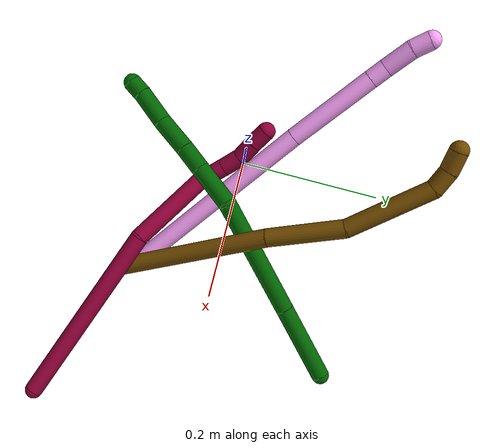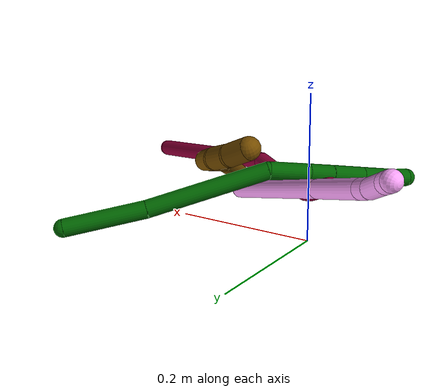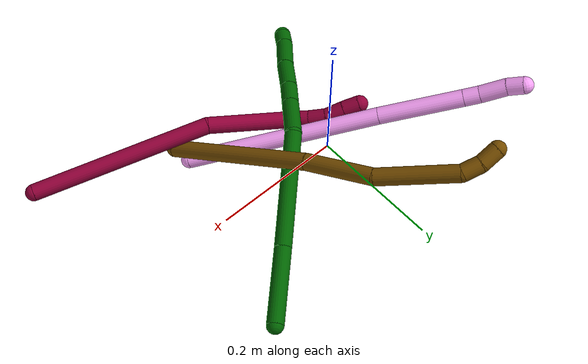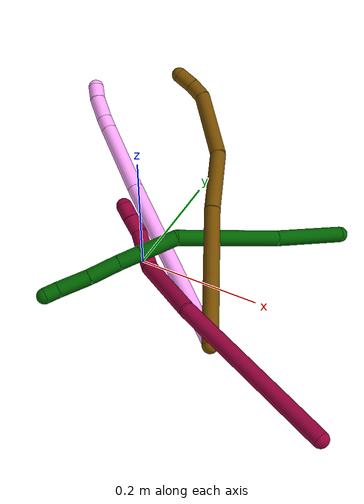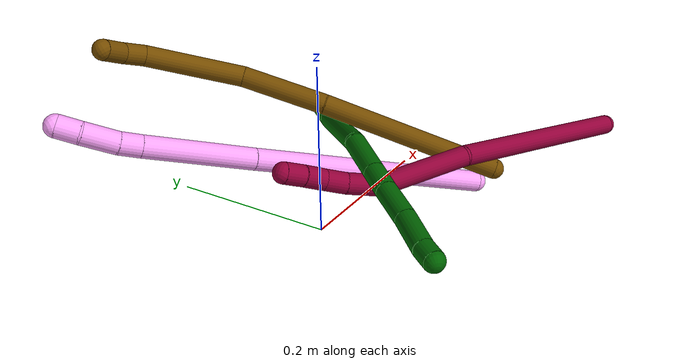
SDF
<sdf version="1.7">
 <world name="default">
  <model name="photoneo_s_sensor">
   <static>1</static>
   <pose>0 0 2 1.57079 1.57079 3.14159</pose>
   <link name="link">
    <inertial><mass>0.1</mass></inertial>
    <sensor name="sensor" type="depth">
     <update_rate>30</update_rate>
     <camera>
      <horizontal_fov>1.22</horizontal_fov>
      <image><width>1920</width><height>1200</height><format>B8G8R8</format></image>
      <clip><near>0.1</near><far>4</far></clip>
      <depth_camera><output>points</output></depth_camera>
     </camera>
     <plugin name="camera_plugin" filename="libgazebo_ros_depth_camera.so">
      <baseline>0.2</baseline>
      <alwaysOn>1</alwaysOn>
      <updateRate>0.0</updateRate>
      <cameraName>camera_ir</cameraName>
      <imageTopicName>/camera/color/image_raw</imageTopicName>
      <cameraInfoTopicName>/camera/color/camera_info</cameraInfoTopicName>
      <depthImageTopicName>/camera/depth/image_raw</depthImageTopicName>
      <depthImageCameraInfoTopicName>/camera/depth/camera_info</depthImageCameraInfoTopicName>
      <pointCloudTopicName>/camera/depth/points</pointCloudTopicName>
      <frameName>fr_optical</frameName>
      <pointCloudCutoff>0.1</pointCloudCutoff>
      <pointCloudCutoffMax>2.0</pointCloudCutoffMax>
      <distortionK1>0</distortionK1>
      <distortionK2>0</distortionK2>
      <distortionK3>0</distortionK3>
      <distortionT1>0</distortionT1>
      <distortionT2>0</distortionT2>
      <CxPrime>0</CxPrime>
      <Cx>0</Cx>
      <Cy>0</Cy>
      <focalLength>0</focalLength>
      <hackBaseline>0</hackBaseline>
     </plugin>
    </sensor>
   </link>
  </model>
  <model name="bin">
   <static>1</static>
   <link name="bottom">
    <collision name="collision-bottom">
     <pose>0 0 -0.01 0 -0 0</pose>
     <geometry><box><size>0.8 0.6 0.02</size></box></geometry>
     <surface>
      <friction><ode><mu>100</mu><mu2>100</mu2></ode></friction>
      <contact><collide_bitmask>65535</collide_bitmask></contact>
     </surface>
    </collision>
   </link>
   <link name="west_wall">
    <collision name="collision-west_wall">
     <pose>-0.41 0 0.1 0 -0 0</pose>
     <geometry><box><size>0.02 0.6 0.2</size></box></geometry>
     <surface>
      <friction><ode><mu>100</mu><mu2>100</mu2></ode></friction>
      <contact><collide_bitmask>65535</collide_bitmask></contact>
     </surface>
    </collision>
   </link>
   <link name="east_wall">
    <collision name="collision-east_wall">
     <pose>0.41 0 0.1 0 -0 0</pose>
     <geometry><box><size>0.02 0.6 0.2</size></box></geometry>
     <surface>
      <friction><ode><mu>100</mu><mu2>100</mu2></ode></friction>
      <contact><collide_bitmask>65535</collide_bitmask></contact>
     </surface>
    </collision>
   </link>
   <link name="south_wall">
    <collision name="collision-south_wall">
     <pose>0 -0.31 0.1 0 -0 0</pose>
     <geometry><box><size>0.8 0.02 0.2</size></box></geometry>
     <surface>
      <friction><ode><mu>100</mu><mu2>100</mu2></ode></friction>
      <contact><collide_bitmask>65535</collide_bitmask></contact>
     </surface>
    </collision>
   </link>
   <link name="north_wall">
    <collision name="collision-north_wall">
     <pose>0 0.31 0.1 0 -0 0</pose>
     <geometry><box><size>0.8 0.02 0.2</size></box></geometry>
     <surface>
      <friction><ode><mu>100</mu><mu2>100</mu2></ode></friction>
      <contact><collide_bitmask>65535</collide_bitmask></contact>
     </surface>
    </collision>
   </link>
  </model>
  <model name="4">
   <static>0</static>
   <link name="4">
    <collision name="collision-cylinder-e_1_1_4">
     <pose>-0.041147 0.050839 0.128882 -0.375724 -0.288694 0.055252</pose>
     <geometry><cylinder><radius>0.0125</radius><length>0.289057</length></cylinder></geometry>
     <surface>
      <friction><ode><mu>1.16</mu><mu2>1.16</mu2><slip1>0</slip1><slip2>0</slip2></ode></friction>
      <contact><ode><kp>1e+06</kp><kd>1</kd><max_vel>0</max_vel><min_depth>0.001</min_depth></ode></contact>
     </surface>
    </collision>
    <visual name="visual-cylinder-e_1_1_4">
     <pose>-0.041147 0.050839 0.128882 -0.375724 -0.288694 0.055252</pose>
     <geometry><cylinder><radius>0.0125</radius><length>0.289057</length></cylinder></geometry>
     <material><ambient>1 0.65098 0.996078 1</ambient></material>
    </visual>
    <collision name="collision-cylinder-e_2_4_5">
     <pose>-0.101488 0.123522 0.312202 -0.381587 -0.316242 0.061575</pose>
     <geometry><cylinder><radius>0.0125</radius><length>0.123432</length></cylinder></geometry>
     <surface>
      <friction><ode><mu>1.16</mu><mu2>1.16</mu2><slip1>0</slip1><slip2>0</slip2></ode></friction>
      <contact><ode><kp>1e+06</kp><kd>1</kd><max_vel>0</max_vel><min_depth>0.001</min_depth></ode></contact>
     </surface>
    </collision>
    <visual name="visual-cylinder-e_2_4_5">
     <pose>-0.101488 0.123522 0.312202 -0.381587 -0.316242 0.061575</pose>
     <geometry><cylinder><radius>0.0125</radius><length>0.123432</length></cylinder></geometry>
     <material><ambient>1 0.65098 0.996078 1</ambient></material>
    </visual>
    <collision name="collision-cylinder-e_3_5_6">
     <pose>-0.124401 0.149769 0.37688 -0.40614 -0.322001 0.066857</pose>
     <geometry><cylinder><radius>0.0125</radius><length>0.023504</length></cylinder></geometry>
     <surface>
      <friction><ode><mu>1.16</mu><mu2>1.16</mu2><slip1>0</slip1><slip2>0</slip2></ode></friction>
      <contact><ode><kp>1e+06</kp><kd>1</kd><max_vel>0</max_vel><min_depth>0.001</min_depth></ode></contact>
     </surface>
    </collision>
    <visual name="visual-cylinder-e_3_5_6">
     <pose>-0.124401 0.149769 0.37688 -0.40614 -0.322001 0.066857</pose>
     <geometry><cylinder><radius>0.0125</radius><length>0.023504</length></cylinder></geometry>
     <material><ambient>1 0.65098 0.996078 1</ambient></material>
    </visual>
    <collision name="collision-cylinder-e_4_6_7">
     <pose>-0.134393 0.163829 0.40318 -0.541357 -0.323035 0.090365</pose>
     <geometry><cylinder><radius>0.0125</radius><length>0.039521</length></cylinder></geometry>
     <surface>
      <friction><ode><mu>1.16</mu><mu2>1.16</mu2><slip1>0</slip1><slip2>0</slip2></ode></friction>
      <contact><ode><kp>1e+06</kp><kd>1</kd><max_vel>0</max_vel><min_depth>0.001</min_depth></ode></contact>
     </surface>
    </collision>
    <visual name="visual-cylinder-e_4_6_7">
     <pose>-0.134393 0.163829 0.40318 -0.541357 -0.323035 0.090365</pose>
     <geometry><cylinder><radius>0.0125</radius><length>0.039521</length></cylinder></geometry>
     <material><ambient>1 0.65098 0.996078 1</ambient></material>
    </visual>
    <collision name="collision-cylinder-e_5_7_2">
     <pose>-0.146705 0.178861 0.428432 -0.529105 -0.515874 0.142693</pose>
     <geometry><cylinder><radius>0.0125</radius><length>0.024487</length></cylinder></geometry>
     <surface>
      <friction><ode><mu>1.16</mu><mu2>1.16</mu2><slip1>0</slip1><slip2>0</slip2></ode></friction>
      <contact><ode><kp>1e+06</kp><kd>1</kd><max_vel>0</max_vel><min_depth>0.001</min_depth></ode></contact>
     </surface>
    </collision>
    <visual name="visual-cylinder-e_5_7_2">
     <pose>-0.146705 0.178861 0.428432 -0.529105 -0.515874 0.142693</pose>
     <geometry><cylinder><radius>0.0125</radius><length>0.024487</length></cylinder></geometry>
     <material><ambient>1 0.65098 0.996078 1</ambient></material>
    </visual>
    <collision name="collision-sphere-2">
     <pose>-0.152745 0.184236 0.437626 0 -0 0</pose>
     <geometry><sphere><radius>0.0125</radius></sphere></geometry>
     <surface>
      <friction><ode><mu>1.16</mu><mu2>1.16</mu2><slip1>0</slip1><slip2>0</slip2></ode></friction>
      <contact><ode><kp>1e+06</kp><kd>1</kd><max_vel>0</max_vel><min_depth>0.001</min_depth></ode></contact>
     </surface>
    </collision>
    <visual name="visual-sphere-2">
     <pose>-0.152745 0.184236 0.437626 0 -0 0</pose>
     <geometry><sphere><radius>0.0125</radius></sphere></geometry>
     <material><ambient>1 0.65098 0.996078 1</ambient></material>
    </visual>
    <collision name="collision-sphere-7">
     <pose>-0.140666 0.173485 0.419239 0 -0 0</pose>
     <geometry><sphere><radius>0.0125</radius></sphere></geometry>
     <surface>
      <friction><ode><mu>1.16</mu><mu2>1.16</mu2><slip1>0</slip1><slip2>0</slip2></ode></friction>
      <contact><ode><kp>1e+06</kp><kd>1</kd><max_vel>0</max_vel><min_depth>0.001</min_depth></ode></contact>
     </surface>
    </collision>
    <visual name="visual-sphere-7">
     <pose>-0.140666 0.173485 0.419239 0 -0 0</pose>
     <geometry><sphere><radius>0.0125</radius></sphere></geometry>
     <material><ambient>1 0.65098 0.996078 1</ambient></material>
    </visual>
    <collision name="collision-sphere-6">
     <pose>-0.12812 0.154173 0.387121 0 -0 0</pose>
     <geometry><sphere><radius>0.0125</radius></sphere></geometry>
     <surface>
      <friction><ode><mu>1.16</mu><mu2>1.16</mu2><slip1>0</slip1><slip2>0</slip2></ode></friction>
      <contact><ode><kp>1e+06</kp><kd>1</kd><max_vel>0</max_vel><min_depth>0.001</min_depth></ode></contact>
     </surface>
    </collision>
    <visual name="visual-sphere-6">
     <pose>-0.12812 0.154173 0.387121 0 -0 0</pose>
     <geometry><sphere><radius>0.0125</radius></sphere></geometry>
     <material><ambient>1 0.65098 0.996078 1</ambient></material>
    </visual>
    <collision name="collision-sphere-5">
     <pose>-0.120682 0.145365 0.366638 0 -0 0</pose>
     <geometry><sphere><radius>0.0125</radius></sphere></geometry>
     <surface>
      <friction><ode><mu>1.16</mu><mu2>1.16</mu2><slip1>0</slip1><slip2>0</slip2></ode></friction>
      <contact><ode><kp>1e+06</kp><kd>1</kd><max_vel>0</max_vel><min_depth>0.001</min_depth></ode></contact>
     </surface>
    </collision>
    <visual name="visual-sphere-5">
     <pose>-0.120682 0.145365 0.366638 0 -0 0</pose>
     <geometry><sphere><radius>0.0125</radius></sphere></geometry>
     <material><ambient>1 0.65098 0.996078 1</ambient></material>
    </visual>
    <collision name="collision-sphere-1">
     <geometry><sphere><radius>0.0125</radius></sphere></geometry>
     <surface>
      <friction><ode><mu>1.16</mu><mu2>1.16</mu2><slip1>0</slip1><slip2>0</slip2></ode></friction>
      <contact><ode><kp>1e+06</kp><kd>1</kd><max_vel>0</max_vel><min_depth>0.001</min_depth></ode></contact>
     </surface>
    </collision>
    <visual name="visual-sphere-1">
     <geometry><sphere><radius>0.0125</radius></sphere></geometry>
     <material><ambient>1 0.65098 0.996078 1</ambient></material>
    </visual>
    <collision name="collision-sphere-4">
     <pose>-0.082295 0.101679 0.257765 0 -0 0</pose>
     <geometry><sphere><radius>0.0125</radius></sphere></geometry>
     <surface>
      <friction><ode><mu>1.16</mu><mu2>1.16</mu2><slip1>0</slip1><slip2>0</slip2></ode></friction>
      <contact><ode><kp>1e+06</kp><kd>1</kd><max_vel>0</max_vel><min_depth>0.001</min_depth></ode></contact>
     </surface>
    </collision>
    <visual name="visual-sphere-4">
     <pose>-0.082295 0.101679 0.257765 0 -0 0</pose>
     <geometry><sphere><radius>0.0125</radius></sphere></geometry>
     <material><ambient>1 0.65098 0.996078 1</ambient></material>
    </visual>
    <inertial>
     <pose>-0.072497 0.088633 0.222146 0 -0 0</pose>
     <mass>0.5</mass>
     <inertia>
      <ixx>0.002206</ixx>
      <ixy>0</ixy>
      <ixz>0</ixz>
      <iyy>0.002184</iyy>
      <iyz>0</iyz>
      <izz>-0.00011</izz>
     </inertia>
    </inertial>
   </link>
   <pose>0.177013 -0.111879 0.01157 1.62091 -0.057462 -1.90721</pose>
  </model>
  <model name="6">
   <static>0</static>
   <link name="6">
    <collision name="collision-cylinder-e_1_1_4">
     <pose>-0.020729 0.004348 -0.051746 -3.05776 -0.379798 2.71193</pose>
     <geometry><cylinder><radius>0.0125</radius><length>0.111826</length></cylinder></geometry>
     <surface>
      <friction><ode><mu>1.16</mu><mu2>1.16</mu2><slip1>0</slip1><slip2>0</slip2></ode></friction>
      <contact><ode><kp>1e+06</kp><kd>1</kd><max_vel>0</max_vel><min_depth>0.001</min_depth></ode></contact>
     </surface>
    </collision>
    <visual name="visual-cylinder-e_1_1_4">
     <pose>-0.020729 0.004348 -0.051746 -3.05776 -0.379798 2.71193</pose>
     <geometry><cylinder><radius>0.0125</radius><length>0.111826</length></cylinder></geometry>
     <material><ambient>0 0.392157 0.003922 1</ambient></material>
    </visual>
    <collision name="collision-cylinder-e_2_4_5">
     <pose>-0.08022 0.014983 -0.179705 -3.0593 -0.469144 2.80038</pose>
     <geometry><cylinder><radius>0.0125</radius><length>0.171469</length></cylinder></geometry>
     <surface>
      <friction><ode><mu>1.16</mu><mu2>1.16</mu2><slip1>0</slip1><slip2>0</slip2></ode></friction>
      <contact><ode><kp>1e+06</kp><kd>1</kd><max_vel>0</max_vel><min_depth>0.001</min_depth></ode></contact>
     </surface>
    </collision>
    <visual name="visual-cylinder-e_2_4_5">
     <pose>-0.08022 0.014983 -0.179705 -3.0593 -0.469144 2.80038</pose>
     <geometry><cylinder><radius>0.0125</radius><length>0.171469</length></cylinder></geometry>
     <material><ambient>0 0.392157 0.003922 1</ambient></material>
    </visual>
    <collision name="collision-cylinder-e_3_5_6">
     <pose>-0.120941 0.018651 -0.285944 3.05463 -0.064883 -1.28179</pose>
     <geometry><cylinder><radius>0.0125</radius><length>0.060409</length></cylinder></geometry>
     <surface>
      <friction><ode><mu>1.16</mu><mu2>1.16</mu2><slip1>0</slip1><slip2>0</slip2></ode></friction>
      <contact><ode><kp>1e+06</kp><kd>1</kd><max_vel>0</max_vel><min_depth>0.001</min_depth></ode></contact>
     </surface>
    </collision>
    <visual name="visual-cylinder-e_3_5_6">
     <pose>-0.120941 0.018651 -0.285944 3.05463 -0.064883 -1.28179</pose>
     <geometry><cylinder><radius>0.0125</radius><length>0.060409</length></cylinder></geometry>
     <material><ambient>0 0.392157 0.003922 1</ambient></material>
    </visual>
    <collision name="collision-cylinder-e_4_6_7">
     <pose>-0.123966 0.014525 -0.333892 3.05765 -0.059268 -1.22931</pose>
     <geometry><cylinder><radius>0.0125</radius><length>0.036032</length></cylinder></geometry>
     <surface>
      <friction><ode><mu>1.16</mu><mu2>1.16</mu2><slip1>0</slip1><slip2>0</slip2></ode></friction>
      <contact><ode><kp>1e+06</kp><kd>1</kd><max_vel>0</max_vel><min_depth>0.001</min_depth></ode></contact>
     </surface>
    </collision>
    <visual name="visual-cylinder-e_4_6_7">
     <pose>-0.123966 0.014525 -0.333892 3.05765 -0.059268 -1.22931</pose>
     <geometry><cylinder><radius>0.0125</radius><length>0.036032</length></cylinder></geometry>
     <material><ambient>0 0.392157 0.003922 1</ambient></material>
    </visual>
    <collision name="collision-cylinder-e_5_7_8">
     <pose>-0.126092 0.009936 -0.376175 3.01579 -0.043058 -0.658816</pose>
     <geometry><cylinder><radius>0.0125</radius><length>0.049157</length></cylinder></geometry>
     <surface>
      <friction><ode><mu>1.16</mu><mu2>1.16</mu2><slip1>0</slip1><slip2>0</slip2></ode></friction>
      <contact><ode><kp>1e+06</kp><kd>1</kd><max_vel>0</max_vel><min_depth>0.001</min_depth></ode></contact>
     </surface>
    </collision>
    <visual name="visual-cylinder-e_5_7_8">
     <pose>-0.126092 0.009936 -0.376175 3.01579 -0.043058 -0.658816</pose>
     <geometry><cylinder><radius>0.0125</radius><length>0.049157</length></cylinder></geometry>
     <material><ambient>0 0.392157 0.003922 1</ambient></material>
    </visual>
    <collision name="collision-cylinder-e_6_8_9">
     <pose>-0.128684 0.005505 -0.425093 3.08666 -0.062313 -1.69665</pose>
     <geometry><cylinder><radius>0.0125</radius><length>0.049283</length></cylinder></geometry>
     <surface>
      <friction><ode><mu>1.16</mu><mu2>1.16</mu2><slip1>0</slip1><slip2>0</slip2></ode></friction>
      <contact><ode><kp>1e+06</kp><kd>1</kd><max_vel>0</max_vel><min_depth>0.001</min_depth></ode></contact>
     </surface>
    </collision>
    <visual name="visual-cylinder-e_6_8_9">
     <pose>-0.128684 0.005505 -0.425093 3.08666 -0.062313 -1.69665</pose>
     <geometry><cylinder><radius>0.0125</radius><length>0.049283</length></cylinder></geometry>
     <material><ambient>0 0.392157 0.003922 1</ambient></material>
    </visual>
    <collision name="collision-cylinder-e_7_9_2">
     <pose>-0.131472 0.002429 -0.460351 2.98172 -0.115075 -1.24678</pose>
     <geometry><cylinder><radius>0.0125</radius><length>0.021825</length></cylinder></geometry>
     <surface>
      <friction><ode><mu>1.16</mu><mu2>1.16</mu2><slip1>0</slip1><slip2>0</slip2></ode></friction>
      <contact><ode><kp>1e+06</kp><kd>1</kd><max_vel>0</max_vel><min_depth>0.001</min_depth></ode></contact>
     </surface>
    </collision>
    <visual name="visual-cylinder-e_7_9_2">
     <pose>-0.131472 0.002429 -0.460351 2.98172 -0.115075 -1.24678</pose>
     <geometry><cylinder><radius>0.0125</radius><length>0.021825</length></cylinder></geometry>
     <material><ambient>0 0.392157 0.003922 1</ambient></material>
    </visual>
    <collision name="collision-sphere-2">
     <pose>-0.132725 0.000703 -0.471054 0 -0 0</pose>
     <geometry><sphere><radius>0.0125</radius></sphere></geometry>
     <surface>
      <friction><ode><mu>1.16</mu><mu2>1.16</mu2><slip1>0</slip1><slip2>0</slip2></ode></friction>
      <contact><ode><kp>1e+06</kp><kd>1</kd><max_vel>0</max_vel><min_depth>0.001</min_depth></ode></contact>
     </surface>
    </collision>
    <visual name="visual-sphere-2">
     <pose>-0.132725 0.000703 -0.471054 0 -0 0</pose>
     <geometry><sphere><radius>0.0125</radius></sphere></geometry>
     <material><ambient>0 0.392157 0.003922 1</ambient></material>
    </visual>
    <collision name="collision-sphere-9">
     <pose>-0.130219 0.004155 -0.449649 0 -0 0</pose>
     <geometry><sphere><radius>0.0125</radius></sphere></geometry>
     <surface>
      <friction><ode><mu>1.16</mu><mu2>1.16</mu2><slip1>0</slip1><slip2>0</slip2></ode></friction>
      <contact><ode><kp>1e+06</kp><kd>1</kd><max_vel>0</max_vel><min_depth>0.001</min_depth></ode></contact>
     </surface>
    </collision>
    <visual name="visual-sphere-9">
     <pose>-0.130219 0.004155 -0.449649 0 -0 0</pose>
     <geometry><sphere><radius>0.0125</radius></sphere></geometry>
     <material><ambient>0 0.392157 0.003922 1</ambient></material>
    </visual>
    <collision name="collision-sphere-4">
     <pose>-0.041458 0.008697 -0.103493 0 -0 0</pose>
     <geometry><sphere><radius>0.0125</radius></sphere></geometry>
     <surface>
      <friction><ode><mu>1.16</mu><mu2>1.16</mu2><slip1>0</slip1><slip2>0</slip2></ode></friction>
      <contact><ode><kp>1e+06</kp><kd>1</kd><max_vel>0</max_vel><min_depth>0.001</min_depth></ode></contact>
     </surface>
    </collision>
    <visual name="visual-sphere-4">
     <pose>-0.041458 0.008697 -0.103493 0 -0 0</pose>
     <geometry><sphere><radius>0.0125</radius></sphere></geometry>
     <material><ambient>0 0.392157 0.003922 1</ambient></material>
    </visual>
    <collision name="collision-sphere-1">
     <geometry><sphere><radius>0.0125</radius></sphere></geometry>
     <surface>
      <friction><ode><mu>1.16</mu><mu2>1.16</mu2><slip1>0</slip1><slip2>0</slip2></ode></friction>
      <contact><ode><kp>1e+06</kp><kd>1</kd><max_vel>0</max_vel><min_depth>0.001</min_depth></ode></contact>
     </surface>
    </collision>
    <visual name="visual-sphere-1">
     <geometry><sphere><radius>0.0125</radius></sphere></geometry>
     <material><ambient>0 0.392157 0.003922 1</ambient></material>
    </visual>
    <collision name="collision-sphere-8">
     <pose>-0.12715 0.006855 -0.400536 0 -0 0</pose>
     <geometry><sphere><radius>0.0125</radius></sphere></geometry>
     <surface>
      <friction><ode><mu>1.16</mu><mu2>1.16</mu2><slip1>0</slip1><slip2>0</slip2></ode></friction>
      <contact><ode><kp>1e+06</kp><kd>1</kd><max_vel>0</max_vel><min_depth>0.001</min_depth></ode></contact>
     </surface>
    </collision>
    <visual name="visual-sphere-8">
     <pose>-0.12715 0.006855 -0.400536 0 -0 0</pose>
     <geometry><sphere><radius>0.0125</radius></sphere></geometry>
     <material><ambient>0 0.392157 0.003922 1</ambient></material>
    </visual>
    <collision name="collision-sphere-5">
     <pose>-0.118983 0.021268 -0.255917 0 -0 0</pose>
     <geometry><sphere><radius>0.0125</radius></sphere></geometry>
     <surface>
      <friction><ode><mu>1.16</mu><mu2>1.16</mu2><slip1>0</slip1><slip2>0</slip2></ode></friction>
      <contact><ode><kp>1e+06</kp><kd>1</kd><max_vel>0</max_vel><min_depth>0.001</min_depth></ode></contact>
     </surface>
    </collision>
    <visual name="visual-sphere-5">
     <pose>-0.118983 0.021268 -0.255917 0 -0 0</pose>
     <geometry><sphere><radius>0.0125</radius></sphere></geometry>
     <material><ambient>0 0.392157 0.003922 1</ambient></material>
    </visual>
    <collision name="collision-sphere-6">
     <pose>-0.122899 0.016033 -0.315971 0 -0 0</pose>
     <geometry><sphere><radius>0.0125</radius></sphere></geometry>
     <surface>
      <friction><ode><mu>1.16</mu><mu2>1.16</mu2><slip1>0</slip1><slip2>0</slip2></ode></friction>
      <contact><ode><kp>1e+06</kp><kd>1</kd><max_vel>0</max_vel><min_depth>0.001</min_depth></ode></contact>
     </surface>
    </collision>
    <visual name="visual-sphere-6">
     <pose>-0.122899 0.016033 -0.315971 0 -0 0</pose>
     <geometry><sphere><radius>0.0125</radius></sphere></geometry>
     <material><ambient>0 0.392157 0.003922 1</ambient></material>
    </visual>
    <collision name="collision-sphere-7">
     <pose>-0.125034 0.013017 -0.351813 0 -0 0</pose>
     <geometry><sphere><radius>0.0125</radius></sphere></geometry>
     <surface>
      <friction><ode><mu>1.16</mu><mu2>1.16</mu2><slip1>0</slip1><slip2>0</slip2></ode></friction>
      <contact><ode><kp>1e+06</kp><kd>1</kd><max_vel>0</max_vel><min_depth>0.001</min_depth></ode></contact>
     </surface>
    </collision>
    <visual name="visual-sphere-7">
     <pose>-0.125034 0.013017 -0.351813 0 -0 0</pose>
     <geometry><sphere><radius>0.0125</radius></sphere></geometry>
     <material><ambient>0 0.392157 0.003922 1</ambient></material>
    </visual>
    <inertial>
     <pose>-0.086511 0.011036 -0.230786 0 -0 0</pose>
     <mass>0.5</mass>
     <inertia>
      <ixx>-0.000326</ixx>
      <ixy>0</ixy>
      <ixz>0</ixz>
      <iyy>0.00063</iyy>
      <iyz>0</iyz>
      <izz>0.000168</izz>
     </inertia>
    </inertial>
   </link>
   <pose>0.266859 0.18233 0.022194 0.141403 1.35872 0.962037</pose>
  </model>
  <model name="8">
   <static>0</static>
   <link name="8">
    <collision name="collision-cylinder-e_1_1_4">
     <pose>-0.096848 0.005377 -0.092867 -3.08376 -0.805545 3.00603</pose>
     <geometry><cylinder><radius>0.0125</radius><length>0.268573</length></cylinder></geometry>
     <surface>
      <friction><ode><mu>1.16</mu><mu2>1.16</mu2><slip1>0</slip1><slip2>0</slip2></ode></friction>
      <contact><ode><kp>1e+06</kp><kd>1</kd><max_vel>0</max_vel><min_depth>0.001</min_depth></ode></contact>
     </surface>
    </collision>
    <visual name="visual-cylinder-e_1_1_4">
     <pose>-0.096848 0.005377 -0.092867 -3.08376 -0.805545 3.00603</pose>
     <geometry><cylinder><radius>0.0125</radius><length>0.268573</length></cylinder></geometry>
     <material><ambient>0.584314 0 0.227451 1</ambient></material>
    </visual>
    <collision name="collision-cylinder-e_2_4_5">
     <pose>-0.227462 0.028454 -0.227731 -2.7427 -0.637643 2.04267</pose>
     <geometry><cylinder><radius>0.0125</radius><length>0.11344</length></cylinder></geometry>
     <surface>
      <friction><ode><mu>1.16</mu><mu2>1.16</mu2><slip1>0</slip1><slip2>0</slip2></ode></friction>
      <contact><ode><kp>1e+06</kp><kd>1</kd><max_vel>0</max_vel><min_depth>0.001</min_depth></ode></contact>
     </surface>
    </collision>
    <visual name="visual-cylinder-e_2_4_5">
     <pose>-0.227462 0.028454 -0.227731 -2.7427 -0.637643 2.04267</pose>
     <geometry><cylinder><radius>0.0125</radius><length>0.11344</length></cylinder></geometry>
     <material><ambient>0.584314 0 0.227451 1</ambient></material>
    </visual>
    <collision name="collision-cylinder-e_3_5_6">
     <pose>-0.277181 0.053711 -0.278362 -2.42272 -0.947288 1.87639</pose>
     <geometry><cylinder><radius>0.0125</radius><length>0.039301</length></cylinder></geometry>
     <surface>
      <friction><ode><mu>1.16</mu><mu2>1.16</mu2><slip1>0</slip1><slip2>0</slip2></ode></friction>
      <contact><ode><kp>1e+06</kp><kd>1</kd><max_vel>0</max_vel><min_depth>0.001</min_depth></ode></contact>
     </surface>
    </collision>
    <visual name="visual-cylinder-e_3_5_6">
     <pose>-0.277181 0.053711 -0.278362 -2.42272 -0.947288 1.87639</pose>
     <geometry><cylinder><radius>0.0125</radius><length>0.039301</length></cylinder></geometry>
     <material><ambient>0.584314 0 0.227451 1</ambient></material>
    </visual>
    <collision name="collision-cylinder-e_4_6_7">
     <pose>-0.304709 0.065594 -0.291839 -2.41236 -1.05952 1.98633</pose>
     <geometry><cylinder><radius>0.0125</radius><length>0.026545</length></cylinder></geometry>
     <surface>
      <friction><ode><mu>1.16</mu><mu2>1.16</mu2><slip1>0</slip1><slip2>0</slip2></ode></friction>
      <contact><ode><kp>1e+06</kp><kd>1</kd><max_vel>0</max_vel><min_depth>0.001</min_depth></ode></contact>
     </surface>
    </collision>
    <visual name="visual-cylinder-e_4_6_7">
     <pose>-0.304709 0.065594 -0.291839 -2.41236 -1.05952 1.98633</pose>
     <geometry><cylinder><radius>0.0125</radius><length>0.026545</length></cylinder></geometry>
     <material><ambient>0.584314 0 0.227451 1</ambient></material>
    </visual>
    <collision name="collision-cylinder-e_5_7_8">
     <pose>-0.328853 0.070524 -0.302527 -3.03869 -1.13346 2.98009</pose>
     <geometry><cylinder><radius>0.0125</radius><length>0.02775</length></cylinder></geometry>
     <surface>
      <friction><ode><mu>1.16</mu><mu2>1.16</mu2><slip1>0</slip1><slip2>0</slip2></ode></friction>
      <contact><ode><kp>1e+06</kp><kd>1</kd><max_vel>0</max_vel><min_depth>0.001</min_depth></ode></contact>
     </surface>
    </collision>
    <visual name="visual-cylinder-e_5_7_8">
     <pose>-0.328853 0.070524 -0.302527 -3.03869 -1.13346 2.98009</pose>
     <geometry><cylinder><radius>0.0125</radius><length>0.02775</length></cylinder></geometry>
     <material><ambient>0.584314 0 0.227451 1</ambient></material>
    </visual>
    <collision name="collision-cylinder-e_6_8_2">
     <pose>-0.352309 0.072504 -0.313695 -2.88863 -1.10315 2.73398</pose>
     <geometry><cylinder><radius>0.0125</radius><length>0.024392</length></cylinder></geometry>
     <surface>
      <friction><ode><mu>1.16</mu><mu2>1.16</mu2><slip1>0</slip1><slip2>0</slip2></ode></friction>
      <contact><ode><kp>1e+06</kp><kd>1</kd><max_vel>0</max_vel><min_depth>0.001</min_depth></ode></contact>
     </surface>
    </collision>
    <visual name="visual-cylinder-e_6_8_2">
     <pose>-0.352309 0.072504 -0.313695 -2.88863 -1.10315 2.73398</pose>
     <geometry><cylinder><radius>0.0125</radius><length>0.024392</length></cylinder></geometry>
     <material><ambient>0.584314 0 0.227451 1</ambient></material>
    </visual>
    <collision name="collision-sphere-2">
     <pose>-0.363195 0.07388 -0.319018 0 -0 0</pose>
     <geometry><sphere><radius>0.0125</radius></sphere></geometry>
     <surface>
      <friction><ode><mu>1.16</mu><mu2>1.16</mu2><slip1>0</slip1><slip2>0</slip2></ode></friction>
      <contact><ode><kp>1e+06</kp><kd>1</kd><max_vel>0</max_vel><min_depth>0.001</min_depth></ode></contact>
     </surface>
    </collision>
    <visual name="visual-sphere-2">
     <pose>-0.363195 0.07388 -0.319018 0 -0 0</pose>
     <geometry><sphere><radius>0.0125</radius></sphere></geometry>
     <material><ambient>0.584314 0 0.227451 1</ambient></material>
    </visual>
    <collision name="collision-sphere-4">
     <pose>-0.193697 0.010753 -0.185734 0 -0 0</pose>
     <geometry><sphere><radius>0.0125</radius></sphere></geometry>
     <surface>
      <friction><ode><mu>1.16</mu><mu2>1.16</mu2><slip1>0</slip1><slip2>0</slip2></ode></friction>
      <contact><ode><kp>1e+06</kp><kd>1</kd><max_vel>0</max_vel><min_depth>0.001</min_depth></ode></contact>
     </surface>
    </collision>
    <visual name="visual-sphere-4">
     <pose>-0.193697 0.010753 -0.185734 0 -0 0</pose>
     <geometry><sphere><radius>0.0125</radius></sphere></geometry>
     <material><ambient>0.584314 0 0.227451 1</ambient></material>
    </visual>
    <collision name="collision-sphere-1">
     <geometry><sphere><radius>0.0125</radius></sphere></geometry>
     <surface>
      <friction><ode><mu>1.16</mu><mu2>1.16</mu2><slip1>0</slip1><slip2>0</slip2></ode></friction>
      <contact><ode><kp>1e+06</kp><kd>1</kd><max_vel>0</max_vel><min_depth>0.001</min_depth></ode></contact>
     </surface>
    </collision>
    <visual name="visual-sphere-1">
     <geometry><sphere><radius>0.0125</radius></sphere></geometry>
     <material><ambient>0.584314 0 0.227451 1</ambient></material>
    </visual>
    <collision name="collision-sphere-8">
     <pose>-0.341422 0.071128 -0.308372 0 -0 0</pose>
     <geometry><sphere><radius>0.0125</radius></sphere></geometry>
     <surface>
      <friction><ode><mu>1.16</mu><mu2>1.16</mu2><slip1>0</slip1><slip2>0</slip2></ode></friction>
      <contact><ode><kp>1e+06</kp><kd>1</kd><max_vel>0</max_vel><min_depth>0.001</min_depth></ode></contact>
     </surface>
    </collision>
    <visual name="visual-sphere-8">
     <pose>-0.341422 0.071128 -0.308372 0 -0 0</pose>
     <geometry><sphere><radius>0.0125</radius></sphere></geometry>
     <material><ambient>0.584314 0 0.227451 1</ambient></material>
    </visual>
    <collision name="collision-sphere-5">
     <pose>-0.261228 0.046155 -0.269727 0 -0 0</pose>
     <geometry><sphere><radius>0.0125</radius></sphere></geometry>
     <surface>
      <friction><ode><mu>1.16</mu><mu2>1.16</mu2><slip1>0</slip1><slip2>0</slip2></ode></friction>
      <contact><ode><kp>1e+06</kp><kd>1</kd><max_vel>0</max_vel><min_depth>0.001</min_depth></ode></contact>
     </surface>
    </collision>
    <visual name="visual-sphere-5">
     <pose>-0.261228 0.046155 -0.269727 0 -0 0</pose>
     <geometry><sphere><radius>0.0125</radius></sphere></geometry>
     <material><ambient>0.584314 0 0.227451 1</ambient></material>
    </visual>
    <collision name="collision-sphere-6">
     <pose>-0.293134 0.061267 -0.286996 0 -0 0</pose>
     <geometry><sphere><radius>0.0125</radius></sphere></geometry>
     <surface>
      <friction><ode><mu>1.16</mu><mu2>1.16</mu2><slip1>0</slip1><slip2>0</slip2></ode></friction>
      <contact><ode><kp>1e+06</kp><kd>1</kd><max_vel>0</max_vel><min_depth>0.001</min_depth></ode></contact>
     </surface>
    </collision>
    <visual name="visual-sphere-6">
     <pose>-0.293134 0.061267 -0.286996 0 -0 0</pose>
     <geometry><sphere><radius>0.0125</radius></sphere></geometry>
     <material><ambient>0.584314 0 0.227451 1</ambient></material>
    </visual>
    <collision name="collision-sphere-7">
     <pose>-0.316284 0.069921 -0.296681 0 -0 0</pose>
     <geometry><sphere><radius>0.0125</radius></sphere></geometry>
     <surface>
      <friction><ode><mu>1.16</mu><mu2>1.16</mu2><slip1>0</slip1><slip2>0</slip2></ode></friction>
      <contact><ode><kp>1e+06</kp><kd>1</kd><max_vel>0</max_vel><min_depth>0.001</min_depth></ode></contact>
     </surface>
    </collision>
    <visual name="visual-sphere-7">
     <pose>-0.316284 0.069921 -0.296681 0 -0 0</pose>
     <geometry><sphere><radius>0.0125</radius></sphere></geometry>
     <material><ambient>0.584314 0 0.227451 1</ambient></material>
    </visual>
    <inertial>
     <pose>-0.17703 0.024499 -0.171017 0 -0 0</pose>
     <mass>0.5</mass>
     <inertia>
      <ixx>-0.000946</ixx>
      <ixy>0</ixy>
      <ixz>0</ixz>
      <iyy>0.001961</iyy>
      <iyz>0</iyz>
      <izz>0.001126</izz>
     </inertia>
    </inertial>
   </link>
   <pose>0.38805 -0.206821 0.026293 -0.673897 0.814822 -0.780927</pose>
  </model>
  <model name="12">
   <static>0</static>
   <link name="12">
    <collision name="collision-cylinder-e_1_1_4">
     <pose>-0.037865 0.061814 0.083668 -0.636298 -0.349086 0.116018</pose>
     <geometry><cylinder><radius>0.0125</radius><length>0.221405</length></cylinder></geometry>
     <surface>
      <friction><ode><mu>1.16</mu><mu2>1.16</mu2><slip1>0</slip1><slip2>0</slip2></ode></friction>
      <contact><ode><kp>1e+06</kp><kd>1</kd><max_vel>0</max_vel><min_depth>0.001</min_depth></ode></contact>
     </surface>
    </collision>
    <visual name="visual-cylinder-e_1_1_4">
     <pose>-0.037865 0.061814 0.083668 -0.636298 -0.349086 0.116018</pose>
     <geometry><cylinder><radius>0.0125</radius><length>0.221405</length></cylinder></geometry>
     <material><ambient>0.466667 0.301961 0 1</ambient></material>
    </visual>
    <collision name="collision-cylinder-e_2_4_5">
     <pose>-0.090419 0.156763 0.204773 -0.724509 -0.285783 0.108941</pose>
     <geometry><cylinder><radius>0.0125</radius><length>0.104215</length></cylinder></geometry>
     <surface>
      <friction><ode><mu>1.16</mu><mu2>1.16</mu2><slip1>0</slip1><slip2>0</slip2></ode></friction>
      <contact><ode><kp>1e+06</kp><kd>1</kd><max_vel>0</max_vel><min_depth>0.001</min_depth></ode></contact>
     </surface>
    </collision>
    <visual name="visual-cylinder-e_2_4_5">
     <pose>-0.090419 0.156763 0.204773 -0.724509 -0.285783 0.108941</pose>
     <geometry><cylinder><radius>0.0125</radius><length>0.104215</length></cylinder></geometry>
     <material><ambient>0.466667 0.301961 0 1</ambient></material>
    </visual>
    <collision name="collision-cylinder-e_3_5_6">
     <pose>-0.138033 0.220271 0.281114 -0.662873 -0.588295 0.207748</pose>
     <geometry><cylinder><radius>0.0125</radius><length>0.118661</length></cylinder></geometry>
     <surface>
      <friction><ode><mu>1.16</mu><mu2>1.16</mu2><slip1>0</slip1><slip2>0</slip2></ode></friction>
      <contact><ode><kp>1e+06</kp><kd>1</kd><max_vel>0</max_vel><min_depth>0.001</min_depth></ode></contact>
     </surface>
    </collision>
    <visual name="visual-cylinder-e_3_5_6">
     <pose>-0.138033 0.220271 0.281114 -0.662873 -0.588295 0.207748</pose>
     <geometry><cylinder><radius>0.0125</radius><length>0.118661</length></cylinder></geometry>
     <material><ambient>0.466667 0.301961 0 1</ambient></material>
    </visual>
    <collision name="collision-cylinder-e_4_6_7">
     <pose>-0.182564 0.253047 0.327128 -0.326 -0.996733 0.178516</pose>
     <geometry><cylinder><radius>0.0125</radius><length>0.027643</length></cylinder></geometry>
     <surface>
      <friction><ode><mu>1.16</mu><mu2>1.16</mu2><slip1>0</slip1><slip2>0</slip2></ode></friction>
      <contact><ode><kp>1e+06</kp><kd>1</kd><max_vel>0</max_vel><min_depth>0.001</min_depth></ode></contact>
     </surface>
    </collision>
    <visual name="visual-cylinder-e_4_6_7">
     <pose>-0.182564 0.253047 0.327128 -0.326 -0.996733 0.178516</pose>
     <geometry><cylinder><radius>0.0125</radius><length>0.027643</length></cylinder></geometry>
     <material><ambient>0.466667 0.301961 0 1</ambient></material>
    </visual>
    <collision name="collision-cylinder-e_5_7_2">
     <pose>-0.206576 0.254112 0.340671 0.205232 -1.08368 -0.123814</pose>
     <geometry><cylinder><radius>0.0125</radius><length>0.028076</length></cylinder></geometry>
     <surface>
      <friction><ode><mu>1.16</mu><mu2>1.16</mu2><slip1>0</slip1><slip2>0</slip2></ode></friction>
      <contact><ode><kp>1e+06</kp><kd>1</kd><max_vel>0</max_vel><min_depth>0.001</min_depth></ode></contact>
     </surface>
    </collision>
    <visual name="visual-cylinder-e_5_7_2">
     <pose>-0.206576 0.254112 0.340671 0.205232 -1.08368 -0.123814</pose>
     <geometry><cylinder><radius>0.0125</radius><length>0.028076</length></cylinder></geometry>
     <material><ambient>0.466667 0.301961 0 1</ambient></material>
    </visual>
    <collision name="collision-sphere-2">
     <pose>-0.218981 0.252773 0.347104 0 -0 0</pose>
     <geometry><sphere><radius>0.0125</radius></sphere></geometry>
     <surface>
      <friction><ode><mu>1.16</mu><mu2>1.16</mu2><slip1>0</slip1><slip2>0</slip2></ode></friction>
      <contact><ode><kp>1e+06</kp><kd>1</kd><max_vel>0</max_vel><min_depth>0.001</min_depth></ode></contact>
     </surface>
    </collision>
    <visual name="visual-sphere-2">
     <pose>-0.218981 0.252773 0.347104 0 -0 0</pose>
     <geometry><sphere><radius>0.0125</radius></sphere></geometry>
     <material><ambient>0.466667 0.301961 0 1</ambient></material>
    </visual>
    <collision name="collision-sphere-7">
     <pose>-0.19417 0.255451 0.334238 0 -0 0</pose>
     <geometry><sphere><radius>0.0125</radius></sphere></geometry>
     <surface>
      <friction><ode><mu>1.16</mu><mu2>1.16</mu2><slip1>0</slip1><slip2>0</slip2></ode></friction>
      <contact><ode><kp>1e+06</kp><kd>1</kd><max_vel>0</max_vel><min_depth>0.001</min_depth></ode></contact>
     </surface>
    </collision>
    <visual name="visual-sphere-7">
     <pose>-0.19417 0.255451 0.334238 0 -0 0</pose>
     <geometry><sphere><radius>0.0125</radius></sphere></geometry>
     <material><ambient>0.466667 0.301961 0 1</ambient></material>
    </visual>
    <collision name="collision-sphere-6">
     <pose>-0.170958 0.250644 0.320017 0 -0 0</pose>
     <geometry><sphere><radius>0.0125</radius></sphere></geometry>
     <surface>
      <friction><ode><mu>1.16</mu><mu2>1.16</mu2><slip1>0</slip1><slip2>0</slip2></ode></friction>
      <contact><ode><kp>1e+06</kp><kd>1</kd><max_vel>0</max_vel><min_depth>0.001</min_depth></ode></contact>
     </surface>
    </collision>
    <visual name="visual-sphere-6">
     <pose>-0.170958 0.250644 0.320017 0 -0 0</pose>
     <geometry><sphere><radius>0.0125</radius></sphere></geometry>
     <material><ambient>0.466667 0.301961 0 1</ambient></material>
    </visual>
    <collision name="collision-sphere-5">
     <pose>-0.105108 0.189898 0.24221 0 -0 0</pose>
     <geometry><sphere><radius>0.0125</radius></sphere></geometry>
     <surface>
      <friction><ode><mu>1.16</mu><mu2>1.16</mu2><slip1>0</slip1><slip2>0</slip2></ode></friction>
      <contact><ode><kp>1e+06</kp><kd>1</kd><max_vel>0</max_vel><min_depth>0.001</min_depth></ode></contact>
     </surface>
    </collision>
    <visual name="visual-sphere-5">
     <pose>-0.105108 0.189898 0.24221 0 -0 0</pose>
     <geometry><sphere><radius>0.0125</radius></sphere></geometry>
     <material><ambient>0.466667 0.301961 0 1</ambient></material>
    </visual>
    <collision name="collision-sphere-1">
     <geometry><sphere><radius>0.0125</radius></sphere></geometry>
     <surface>
      <friction><ode><mu>1.16</mu><mu2>1.16</mu2><slip1>0</slip1><slip2>0</slip2></ode></friction>
      <contact><ode><kp>1e+06</kp><kd>1</kd><max_vel>0</max_vel><min_depth>0.001</min_depth></ode></contact>
     </surface>
    </collision>
    <visual name="visual-sphere-1">
     <geometry><sphere><radius>0.0125</radius></sphere></geometry>
     <material><ambient>0.466667 0.301961 0 1</ambient></material>
    </visual>
    <collision name="collision-sphere-4">
     <pose>-0.075729 0.123629 0.167336 0 -0 0</pose>
     <geometry><sphere><radius>0.0125</radius></sphere></geometry>
     <surface>
      <friction><ode><mu>1.16</mu><mu2>1.16</mu2><slip1>0</slip1><slip2>0</slip2></ode></friction>
      <contact><ode><kp>1e+06</kp><kd>1</kd><max_vel>0</max_vel><min_depth>0.001</min_depth></ode></contact>
     </surface>
    </collision>
    <visual name="visual-sphere-4">
     <pose>-0.075729 0.123629 0.167336 0 -0 0</pose>
     <geometry><sphere><radius>0.0125</radius></sphere></geometry>
     <material><ambient>0.466667 0.301961 0 1</ambient></material>
    </visual>
    <inertial>
     <pose>-0.090064 0.14058 0.183659 0 -0 0</pose>
     <mass>0.5</mass>
     <inertia>
      <ixx>0.001183</ixx>
      <ixy>0</ixy>
      <ixz>0</ixz>
      <iyy>0.001107</iyy>
      <iyz>0</iyz>
      <izz>-0.000194</izz>
     </inertia>
    </inertial>
   </link>
   <pose>0.187256 -0.130929 0.029518 -0.532972 -0.032392 0.064165</pose>
  </model>
 </world>
</sdf>
